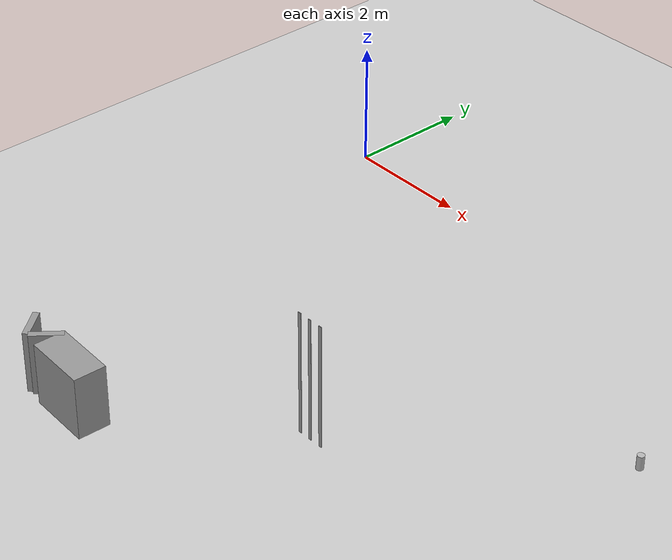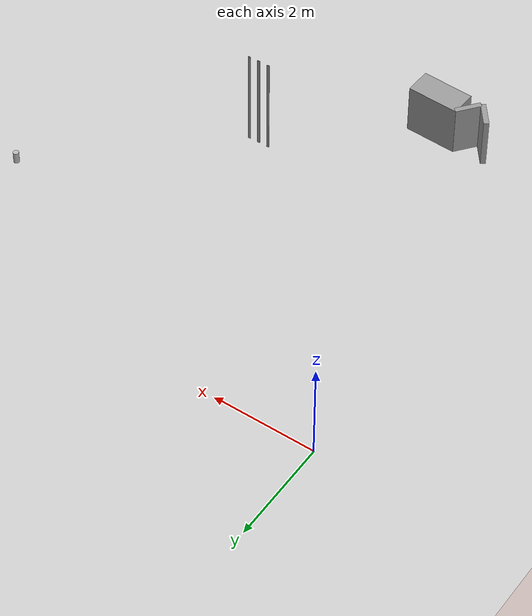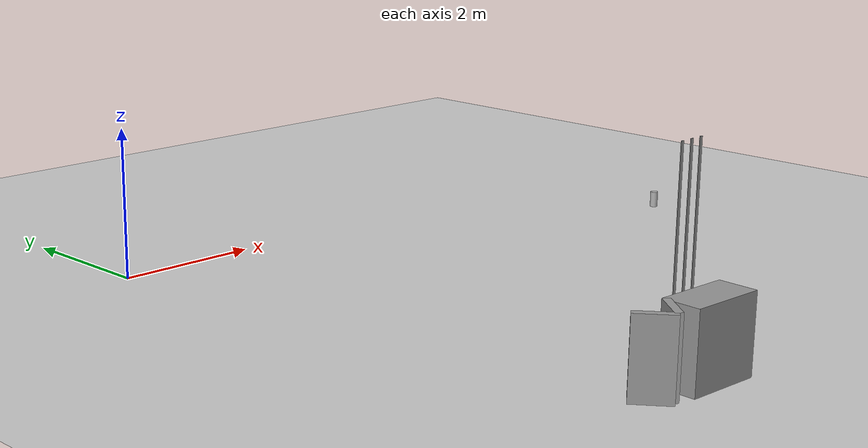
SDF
<sdf version="1.6">
 <world name="default">
  <model name="ground_plane">
   <static>1</static>
   <link name="link">
    <collision name="collision">
     <geometry><plane><normal>0 0 1</normal><size>100 100</size></plane></geometry>
     <surface><friction><ode><mu>100</mu><mu2>50</mu2></ode></friction></surface>
    </collision>
    <visual name="visual">
     <cast_shadows>0</cast_shadows>
     <geometry><plane><normal>0 0 1</normal><size>100 100</size></plane></geometry>
     <material>
      <script><uri>file://media/materials/scripts/gazebo.material</uri><name>Gazebo/Grey</name></script>
     </material>
    </visual>
   </link>
  </model>
  <model name="beer_clone_1">
   <link name="link">
    <pose>0 0 0.115 0 -0 0</pose>
    <inertial>
     <mass>0.39</mass>
     <inertia><ixx>0.00058</ixx><ixy>0</ixy><ixz>0</ixz><iyy>0.00058</iyy><iyz>0</iyz><izz>0.00019</izz></inertia>
    </inertial>
    <collision name="collision">
     <geometry><cylinder><radius>0.055</radius><length>0.23</length></cylinder></geometry>
    </collision>
    <visual name="visual">
     <geometry><cylinder><radius>0.055</radius><length>0.23</length></cylinder></geometry>
     <material>
      <script>
       <uri>model://beer/materials/scripts</uri>
       <uri>model://beer/materials/textures</uri>
       <name>Beer/Diffuse</name>
      </script>
     </material>
    </visual>
   </link>
   <pose>8.10989 -2.46159 0.230065 -3.14054 -0.000581 2.77993</pose>
  </model>
  <model name="boxDaBox_clone">
   <link name="link">
    <inertial>
     <mass>1</mass>
     <inertia>
      <ixx>0.166667</ixx>
      <ixy>0</ixy>
      <ixz>0</ixz>
      <iyy>0.166667</iyy>
      <iyz>0</iyz>
      <izz>0.166667</izz>
     </inertia>
    </inertial>
    <visual name="visual">
     <geometry><box><size>0.0525 0.01 2</size></box></geometry>
     <material>
      <script><name>Gazebo/Grey</name><uri>file://media/materials/scripts/gazebo.material</uri></script>
      <ambient>0.3 0.3 0.3 1</ambient>
      <diffuse>0.7 0.7 0.7 1</diffuse>
      <specular>0.01 0.01 0.01 1</specular>
      <emissive>0 0 0 1</emissive>
      <shader type="vertex"><normal_map>__default__</normal_map></shader>
     </material>
    </visual>
    <collision name="collision">
     <laser_retro>1</laser_retro>
     <geometry><box><size>0.0525 0.01 2</size></box></geometry>
     <surface>
      <friction>
       <ode><mu>1</mu><mu2>1</mu2><fdir1>0 0 0</fdir1><slip1>0</slip1><slip2>0</slip2></ode>
       <torsional>
        <coefficient>1</coefficient>
        <patch_radius>0</patch_radius>
        <surface_radius>0</surface_radius>
        <use_patch_radius>1</use_patch_radius>
        <ode><slip>0</slip></ode>
       </torsional>
      </friction>
      <bounce><restitution_coefficient>0</restitution_coefficient><threshold>1e+06</threshold></bounce>
      <contact>
       <collide_without_contact>0</collide_without_contact>
       <collide_without_contact_bitmask>1</collide_without_contact_bitmask>
       <collide_bitmask>1</collide_bitmask>
       <ode>
        <soft_cfm>0</soft_cfm>
        <soft_erp>0.2</soft_erp>
        <kp>1e+13</kp>
        <kd>1</kd>
        <max_vel>0.01</max_vel>
        <min_depth>0</min_depth>
       </ode>
       <bullet>
        <split_impulse>1</split_impulse>
        <split_impulse_penetration_threshold>-0.01</split_impulse_penetration_threshold>
        <soft_cfm>0</soft_cfm>
        <soft_erp>0.2</soft_erp>
        <kp>1e+13</kp>
        <kd>1</kd>
       </bullet>
      </contact>
     </surface>
    </collision>
   </link>
   <static>0</static>
   <pose>5.01246 -5.34665 1 -2e-06 3e-06 -0.000638</pose>
  </model>
  <model name="boxDaBox_0_clone">
   <link name="link">
    <inertial>
     <mass>1</mass>
     <inertia>
      <ixx>0.166667</ixx>
      <ixy>0</ixy>
      <ixz>0</ixz>
      <iyy>0.166667</iyy>
      <iyz>0</iyz>
      <izz>0.166667</izz>
     </inertia>
    </inertial>
    <visual name="visual">
     <geometry><box><size>0.0525 0.01 2</size></box></geometry>
     <material>
      <script><name>Gazebo/Grey</name><uri>file://media/materials/scripts/gazebo.material</uri></script>
      <ambient>0.3 0.3 0.3 1</ambient>
      <diffuse>0.7 0.7 0.7 1</diffuse>
      <specular>0.01 0.01 0.01 1</specular>
      <emissive>0 0 0 1</emissive>
      <shader type="vertex"><normal_map>__default__</normal_map></shader>
     </material>
    </visual>
    <collision name="collision">
     <laser_retro>1</laser_retro>
     <geometry><box><size>0.0525 0.01 2</size></box></geometry>
     <surface>
      <friction>
       <ode><mu>1</mu><mu2>1</mu2><fdir1>0 0 0</fdir1><slip1>0</slip1><slip2>0</slip2></ode>
       <torsional>
        <coefficient>1</coefficient>
        <patch_radius>0</patch_radius>
        <surface_radius>0</surface_radius>
        <use_patch_radius>1</use_patch_radius>
        <ode><slip>0</slip></ode>
       </torsional>
      </friction>
      <bounce><restitution_coefficient>0</restitution_coefficient><threshold>1e+06</threshold></bounce>
      <contact>
       <collide_without_contact>0</collide_without_contact>
       <collide_without_contact_bitmask>1</collide_without_contact_bitmask>
       <collide_bitmask>1</collide_bitmask>
       <ode>
        <soft_cfm>0</soft_cfm>
        <soft_erp>0.2</soft_erp>
        <kp>1e+13</kp>
        <kd>1</kd>
        <max_vel>0.01</max_vel>
        <min_depth>0</min_depth>
       </ode>
       <bullet>
        <split_impulse>1</split_impulse>
        <split_impulse_penetration_threshold>-0.01</split_impulse_penetration_threshold>
        <soft_cfm>0</soft_cfm>
        <soft_erp>0.2</soft_erp>
        <kp>1e+13</kp>
        <kd>1</kd>
       </bullet>
      </contact>
     </surface>
    </collision>
   </link>
   <static>0</static>
   <pose>4.81245 -5.34998 1 -9e-06 -4e-06 -0.001365</pose>
  </model>
  <model name="boxDaBox_0_clone_clone">
   <link name="link">
    <inertial>
     <mass>1</mass>
     <inertia>
      <ixx>0.166667</ixx>
      <ixy>0</ixy>
      <ixz>0</ixz>
      <iyy>0.166667</iyy>
      <iyz>0</iyz>
      <izz>0.166667</izz>
     </inertia>
    </inertial>
    <visual name="visual">
     <geometry><box><size>0.0525 0.01 2</size></box></geometry>
     <material>
      <script><name>Gazebo/Grey</name><uri>file://media/materials/scripts/gazebo.material</uri></script>
      <ambient>0.3 0.3 0.3 1</ambient>
      <diffuse>0.7 0.7 0.7 1</diffuse>
      <specular>0.01 0.01 0.01 1</specular>
      <emissive>0 0 0 1</emissive>
      <shader type="vertex"><normal_map>__default__</normal_map></shader>
     </material>
    </visual>
    <collision name="collision">
     <laser_retro>1</laser_retro>
     <geometry><box><size>0.0525 0.01 2</size></box></geometry>
     <surface>
      <friction>
       <ode><mu>1</mu><mu2>1</mu2><fdir1>0 0 0</fdir1><slip1>0</slip1><slip2>0</slip2></ode>
       <torsional>
        <coefficient>1</coefficient>
        <patch_radius>0</patch_radius>
        <surface_radius>0</surface_radius>
        <use_patch_radius>1</use_patch_radius>
        <ode><slip>0</slip></ode>
       </torsional>
      </friction>
      <bounce><restitution_coefficient>0</restitution_coefficient><threshold>1e+06</threshold></bounce>
      <contact>
       <collide_without_contact>0</collide_without_contact>
       <collide_without_contact_bitmask>1</collide_without_contact_bitmask>
       <collide_bitmask>1</collide_bitmask>
       <ode>
        <soft_cfm>0</soft_cfm>
        <soft_erp>0.2</soft_erp>
        <kp>1e+13</kp>
        <kd>1</kd>
        <max_vel>0.01</max_vel>
        <min_depth>0</min_depth>
       </ode>
       <bullet>
        <split_impulse>1</split_impulse>
        <split_impulse_penetration_threshold>-0.01</split_impulse_penetration_threshold>
        <soft_cfm>0</soft_cfm>
        <soft_erp>0.2</soft_erp>
        <kp>1e+13</kp>
        <kd>1</kd>
       </bullet>
      </contact>
     </surface>
    </collision>
   </link>
   <static>0</static>
   <pose>4.61243 -5.34993 1 2e-06 8e-06 -0.000602</pose>
  </model>
  <model name="unit_box_0_5_clone">
   <link name="link">
    <inertial>
     <mass>1</mass>
     <inertia>
      <ixx>0.166667</ixx>
      <ixy>0</ixy>
      <ixz>0</ixz>
      <iyy>0.166667</iyy>
      <iyz>0</iyz>
      <izz>0.166667</izz>
     </inertia>
    </inertial>
    <visual name="visual">
     <geometry><box><size>1 0.5 1</size></box></geometry>
     <material>
      <script><name>Gazebo/Grey</name><uri>file://media/materials/scripts/gazebo.material</uri></script>
      <shader type="vertex"><normal_map>__default__</normal_map></shader>
      <ambient>0.3 0.3 0.3 1</ambient>
      <diffuse>0.7 0.7 0.7 1</diffuse>
      <specular>0.01 0.01 0.01 1</specular>
      <emissive>0 0 0 1</emissive>
     </material>
    </visual>
    <collision name="collision">
     <geometry><box><size>1 0.5 1</size></box></geometry>
     <surface>
      <friction>
       <ode><mu>1</mu><mu2>1</mu2><fdir1>0 0 0</fdir1><slip1>0</slip1><slip2>0</slip2></ode>
       <torsional>
        <coefficient>1</coefficient>
        <patch_radius>0</patch_radius>
        <surface_radius>0</surface_radius>
        <use_patch_radius>1</use_patch_radius>
        <ode><slip>0</slip></ode>
       </torsional>
      </friction>
      <bounce><restitution_coefficient>0</restitution_coefficient><threshold>1e+06</threshold></bounce>
      <contact>
       <collide_without_contact>0</collide_without_contact>
       <collide_without_contact_bitmask>1</collide_without_contact_bitmask>
       <collide_bitmask>1</collide_bitmask>
       <ode>
        <soft_cfm>0</soft_cfm>
        <soft_erp>0.2</soft_erp>
        <kp>1e+13</kp>
        <kd>1</kd>
        <max_vel>0.01</max_vel>
        <min_depth>0</min_depth>
       </ode>
       <bullet>
        <split_impulse>1</split_impulse>
        <split_impulse_penetration_threshold>-0.01</split_impulse_penetration_threshold>
        <soft_cfm>0</soft_cfm>
        <soft_erp>0.2</soft_erp>
        <kp>1e+13</kp>
        <kd>1</kd>
       </bullet>
      </contact>
     </surface>
    </collision>
   </link>
   <static>0</static>
   <pose>2.28758 -7.41977 0.499997 0 -7e-06 -0.040824</pose>
  </model>
  <model name="unit_box_0_5_clone_clone_0_clone">
   <link name="link">
    <inertial>
     <mass>1</mass>
     <inertia>
      <ixx>0.166667</ixx>
      <ixy>0</ixy>
      <ixz>0</ixz>
      <iyy>0.166667</iyy>
      <iyz>0</iyz>
      <izz>0.166667</izz>
     </inertia>
    </inertial>
    <visual name="visual">
     <geometry><box><size>0.5 0.1 1</size></box></geometry>
     <material>
      <script><name>Gazebo/Grey</name><uri>file://media/materials/scripts/gazebo.material</uri></script>
      <shader type="vertex"><normal_map>__default__</normal_map></shader>
      <ambient>0.3 0.3 0.3 1</ambient>
      <diffuse>0.7 0.7 0.7 1</diffuse>
      <specular>0.01 0.01 0.01 1</specular>
      <emissive>0 0 0 1</emissive>
     </material>
    </visual>
    <collision name="collision">
     <geometry><box><size>0.5 0.1 1</size></box></geometry>
     <surface>
      <friction>
       <ode><mu>1</mu><mu2>1</mu2><fdir1>0 0 0</fdir1><slip1>0</slip1><slip2>0</slip2></ode>
       <torsional>
        <coefficient>1</coefficient>
        <patch_radius>0</patch_radius>
        <surface_radius>0</surface_radius>
        <use_patch_radius>1</use_patch_radius>
        <ode><slip>0</slip></ode>
       </torsional>
      </friction>
      <bounce><restitution_coefficient>0</restitution_coefficient><threshold>1e+06</threshold></bounce>
      <contact>
       <collide_without_contact>0</collide_without_contact>
       <collide_without_contact_bitmask>1</collide_without_contact_bitmask>
       <collide_bitmask>1</collide_bitmask>
       <ode>
        <soft_cfm>0</soft_cfm>
        <soft_erp>0.2</soft_erp>
        <kp>1e+13</kp>
        <kd>1</kd>
        <max_vel>0.01</max_vel>
        <min_depth>0</min_depth>
       </ode>
       <bullet>
        <split_impulse>1</split_impulse>
        <split_impulse_penetration_threshold>-0.01</split_impulse_penetration_threshold>
        <soft_cfm>0</soft_cfm>
        <soft_erp>0.2</soft_erp>
        <kp>1e+13</kp>
        <kd>1</kd>
       </bullet>
      </contact>
     </surface>
    </collision>
   </link>
   <static>0</static>
   <pose>1.34708 -7.39971 0.5 0 0 -0.901401</pose>
  </model>
  <model name="unit_box_0_5_clone_clone_0">
   <link name="link">
    <inertial>
     <mass>1</mass>
     <inertia>
      <ixx>0.166667</ixx>
      <ixy>0</ixy>
      <ixz>0</ixz>
      <iyy>0.166667</iyy>
      <iyz>0</iyz>
      <izz>0.166667</izz>
     </inertia>
    </inertial>
    <visual name="visual">
     <geometry><box><size>0.5 0.1 1</size></box></geometry>
     <material>
      <script><name>Gazebo/Grey</name><uri>file://media/materials/scripts/gazebo.material</uri></script>
      <shader type="vertex"><normal_map>__default__</normal_map></shader>
      <ambient>0.3 0.3 0.3 1</ambient>
      <diffuse>0.7 0.7 0.7 1</diffuse>
      <specular>0.01 0.01 0.01 1</specular>
      <emissive>0 0 0 1</emissive>
     </material>
    </visual>
    <collision name="collision">
     <geometry><box><size>0.5 0.1 1</size></box></geometry>
     <surface>
      <friction>
       <ode><mu>1</mu><mu2>1</mu2><fdir1>0 0 0</fdir1><slip1>0</slip1><slip2>0</slip2></ode>
       <torsional>
        <coefficient>1</coefficient>
        <patch_radius>0</patch_radius>
        <surface_radius>0</surface_radius>
        <use_patch_radius>1</use_patch_radius>
        <ode><slip>0</slip></ode>
       </torsional>
      </friction>
      <bounce><restitution_coefficient>0</restitution_coefficient><threshold>1e+06</threshold></bounce>
      <contact>
       <collide_without_contact>0</collide_without_contact>
       <collide_without_contact_bitmask>1</collide_without_contact_bitmask>
       <collide_bitmask>1</collide_bitmask>
       <ode>
        <soft_cfm>0</soft_cfm>
        <soft_erp>0.2</soft_erp>
        <kp>1e+13</kp>
        <kd>1</kd>
        <max_vel>0.01</max_vel>
        <min_depth>0</min_depth>
       </ode>
       <bullet>
        <split_impulse>1</split_impulse>
        <split_impulse_penetration_threshold>-0.01</split_impulse_penetration_threshold>
        <soft_cfm>0</soft_cfm>
        <soft_erp>0.2</soft_erp>
        <kp>1e+13</kp>
        <kd>1</kd>
       </bullet>
      </contact>
     </surface>
    </collision>
   </link>
   <static>0</static>
   <pose>1.68048 -7.3765 0.500001 -4e-06 2e-06 0.9014</pose>
  </model>
 </world>
</sdf>
